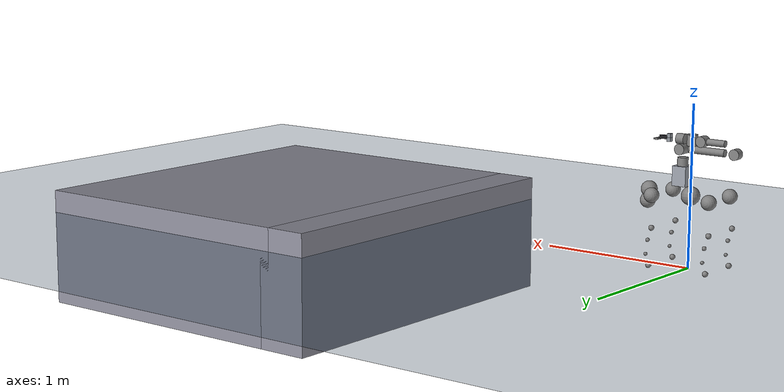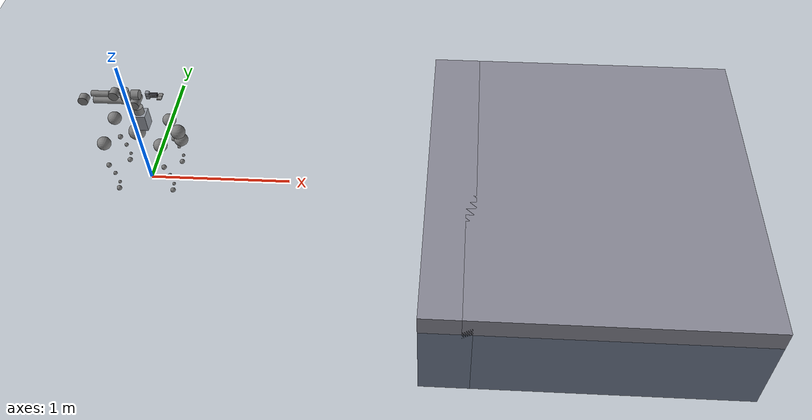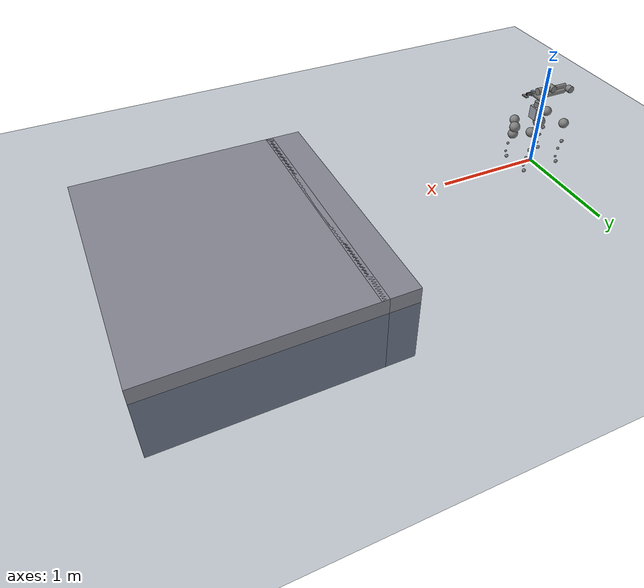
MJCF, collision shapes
<mujoco model="go2 stairs scene">
  <include file="go2z1_mjx.xml"/>

  <statistic center="2.17 0 0.5" extent="2.0"/>

  <visual>
    <headlight diffuse="0.6 0.6 0.6" ambient="0.3 0.3 0.3" specular="0 0 0"/>
    <rgba haze="0.15 0.25 0.35 1"/>
    <global azimuth="-130" elevation="-20" offwidth="1920" offheight="1080"/>
  </visual>

  <asset>
    <texture type="skybox" builtin="gradient" rgb1="0.3 0.5 0.7" rgb2="0 0 0" width="512" height="3072"/>
    <texture type="2d" name="groundplane" builtin="checker" mark="edge" rgb1="0.2 0.3 0.4" rgb2="0.1 0.2 0.3"
      markrgb="0.8 0.8 0.8" width="300" height="300"/>
    <material name="groundplane" texture="groundplane" texuniform="true" texrepeat="5 5" reflectance="0.2"/>
    <material name="tread" rgba="0.55 0.55 0.6 1" reflectance="0.05"/>
  </asset>

  <worldbody>
    <light pos="0 0 3.0" dir="0 0 -1" directional="true"/>
    <geom name="floor" size="0 0 0.05" type="plane" material="groundplane"
      condim="3" friction="0.8 0.02 0.01"/>
    <body name="step0" mocap="true" pos="2.17500 0.00000 -0.25000">
      <geom name="step0_geom" type="box" size="0.17500 1.25000 0.40000"
        material="tread" condim="3" friction="0.8 0.02 0.01"/>
    </body>
    <body name="landing" mocap="true" pos="3.28000 0.00000 -0.25000">
      <geom name="landing_geom" type="box" size="1.00000 1.25000 0.40000"
        material="tread" condim="3" friction="0.8 0.02 0.01"/>
    </body>
  </worldbody>

  <contact>
    <exclude body1="world" body2="step0"/>
    <exclude body1="world" body2="landing"/>
  </contact>
</mujoco>

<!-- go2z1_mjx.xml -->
<mujoco model="go2">
  <compiler angle="radian" meshdir="assets/"/>

  <option impratio="100" iterations="1" ls_iterations="5"/>

  <size nkey="3"/>

  <default>
    <default class="go2">
      <joint armature="0.01" damping="2"/>
      <geom condim="1" friction="0.6" margin="0.001"/>
      <general forcerange="-24 24" biastype="affine" gainprm="50" biasprm="0 -50 -0.5"/>
      <default class="abduction">
        <joint range="-1.0472 1.0472"/>
        <general ctrlrange="-0.9472 0.9472"/>
      </default>
      <default class="hip">
        <joint range="-1.5708 3.4907"/>
        <general ctrlrange="-1.4 2.5"/>
      </default>
      <default class="knee">
        <joint range="-2.7227 -0.83776"/>
        <general ctrlrange="-2.6227 -0.84776"/>
      </default>
      <default class="visual">
        <geom type="mesh" contype="0" conaffinity="0" group="2"/>
      </default>
      <default class="go2foot">
        <geom rgba="0.231373 0.380392 0.705882 1"/>
        <site group="1"/>
      </default>
      <default class="collision">
        <geom group="3"/>
        <default class="foot">
          <geom size="0.0175 0 0" condim="6" priority="1" friction="0.8 0.02 0.01" solimp="0.015 1 0.031"/>
        </default>
      </default>
    </default>
    <default class="arm_main">
      <default class="arm_z1">
        <joint damping="1" frictionloss="1"/>
        <general forcerange="-30 30" biastype="affine" gainprm="1000" biasprm="0 -1000 -100"/>
        <default class="arm_visual">
          <geom type="mesh" contype="0" conaffinity="0" group="2"/>
        </default>
        <default class="arm_collision">
          <geom type="cylinder" group="3"/>
          <default class="arm_z1_gripper_stator_collision">
            <geom type="mesh"/>
          </default>
          <default class="arm_z1_gripper_stator_pad_collision_1">
            <geom size="0.014 0.015 0.004" type="box"/>
          </default>
          <default class="arm_z1_gripper_stator_pad_collision_2">
            <geom size="0.014 0.015 0.004" type="box"/>
          </default>
          <default class="arm_z1_gripper_mover_collision">
            <geom type="mesh"/>
          </default>
          <default class="arm_z1_gripper_mover_pad_collision_1">
            <geom size="0.014 0.015 0.004" type="box"/>
          </default>
          <default class="arm_z1_gripper_mover_pad_collision_2">
            <geom size="0.014 0.015 0.004" type="box"/>
          </default>
        </default>
      </default>
    </default>
  </default>

  <asset>
    <material name="metal" rgba="0.9 0.95 0.95 1"/>
    <material name="black" rgba="0 0 0 1"/>
    <material name="white"/>
    <material name="gray" rgba="0.671705 0.692426 0.77427 1"/>
    <mesh name="base_0" file="base_0.obj"/>
    <mesh name="base_1" file="base_1.obj"/>
    <mesh name="base_2" file="base_2.obj"/>
    <mesh name="base_3" file="base_3.obj"/>
    <mesh name="base_4" file="base_4.obj"/>
    <mesh name="hip_0" file="hip_0.obj"/>
    <mesh name="hip_1" file="hip_1.obj"/>
    <mesh name="thigh_0" file="thigh_0.obj"/>
    <mesh name="thigh_1" file="thigh_1.obj"/>
    <mesh name="thigh_mirror_0" file="thigh_mirror_0.obj"/>
    <mesh name="thigh_mirror_1" file="thigh_mirror_1.obj"/>
    <mesh name="calf_0" file="calf_0.obj"/>
    <mesh name="calf_1" file="calf_1.obj"/>
    <mesh name="calf_mirror_0" file="calf_mirror_0.obj"/>
    <mesh name="calf_mirror_1" file="calf_mirror_1.obj"/>
    <mesh name="foot" file="foot.obj"/>
    <mesh name="arm_z1_Link00" file="z1_Link00.stl"/>
    <mesh name="arm_z1_Link01" file="z1_Link01.stl"/>
    <mesh name="arm_z1_Link02" file="z1_Link02.stl"/>
    <mesh name="arm_z1_Link03" file="z1_Link03.stl"/>
    <mesh name="arm_z1_Link04" file="z1_Link04.stl"/>
    <mesh name="arm_z1_Link05" file="z1_Link05.stl"/>
    <mesh name="arm_z1_Link06" file="z1_Link06.stl"/>
    <mesh name="arm_z1_GripperStator" file="z1_GripperStator.stl"/>
    <mesh name="arm_z1_GripperStator_col_1" file="z1_GripperStator_col_1.stl"/>
    <mesh name="arm_z1_GripperStator_col_2" file="z1_GripperStator_col_2.stl"/>
    <mesh name="arm_z1_GripperStator_col_3" file="z1_GripperStator_col_3.stl"/>
    <mesh name="arm_z1_GripperStator_col_4" file="z1_GripperStator_col_4.stl"/>
    <mesh name="arm_z1_GripperStator_col_5" file="z1_GripperStator_col_5.stl"/>
    <mesh name="arm_z1_GripperStator_col_6" file="z1_GripperStator_col_6.stl"/>
    <mesh name="arm_z1_GripperMover" file="z1_GripperMover.stl"/>
    <mesh name="arm_z1_GripperMover_col_1" file="z1_GripperMover_col_1.stl"/>
    <mesh name="arm_z1_GripperMover_col_2" file="z1_GripperMover_col_2.stl"/>
    <mesh name="arm_z1_GripperMover_col_3" file="z1_GripperMover_col_3.stl"/>
    <mesh name="arm_z1_GripperMover_col_4" file="z1_GripperMover_col_4.stl"/>
    <mesh name="arm_z1_GripperMover_col_5" file="z1_GripperMover_col_5.stl"/>
  </asset>

  <worldbody>
    <body name="base" childclass="go2" pos="0 0 0.445">
      <inertial pos="0.021112 0 -0.005366" quat="-0.000543471 0.713435 -0.00173769 0.700719" mass="6.921" diaginertia="0.107027 0.0980771 0.0244531"/>
      <joint type="free" armature="0" damping="0"/>
      <geom class="visual" material="black" mesh="base_0"/>
      <geom class="visual" material="black" mesh="base_1"/>
      <geom class="visual" material="black" mesh="base_2"/>
      <geom class="visual" material="white" mesh="base_3"/>
      <geom class="visual" material="gray" mesh="base_4"/>
      <geom class="collision" size="0.057"/>
      <geom class="collision" size="0.05" pos="0.285 0 0.01"/>
      <geom class="collision" size="0.047" pos="0.293 0 -0.06"/>
      <site name="imu" pos="-0.02557 0 0.04232"/>
      <site name="head_cam_site" pos="0.33 0 0.04" group="4"/>
      <camera name="track" pos="0.846 -1.465 0.916" quat="0.791164 0.554139 0.148485 0.211997" mode="trackcom"/>
      <camera name="head" pos="0.33 0 0.04" quat="0.579228 0.40558 -0.40558 -0.579228" fovy="75"/>
      <body name="FL_hip" pos="0.1934 0.0465 0">
        <inertial pos="-0.0054 0.00194 -0.000105" quat="0.497014 0.499245 0.505462 0.498237" mass="0.678" diaginertia="0.00088403 0.000596003 0.000479967"/>
        <joint name="FL_hip_joint" class="abduction" pos="0 0 0" axis="1 0 0"/>
        <geom class="visual" material="metal" mesh="hip_0"/>
        <geom class="visual" material="gray" mesh="hip_1"/>
        <geom class="collision" size="0.046" pos="0 0.08 0" quat="0.707107 0.707107 0 0"/>
        <body name="FL_thigh" pos="0 0.0955 0">
          <inertial pos="-0.00374 -0.0223 -0.0327" quat="0.829533 0.0847635 -0.0200632 0.551623" mass="1.152" diaginertia="0.00594973 0.00584149 0.000878787"/>
          <joint name="FL_thigh_joint" class="hip" pos="0 0 0" axis="0 1 0"/>
          <geom class="visual" material="metal" mesh="thigh_0"/>
          <geom class="visual" material="gray" mesh="thigh_1"/>
          <geom class="collision" size="0.017" pos="-0.015 0 -0.1955" quat="0.707107 0 0.707107 0"/>
          <body name="FL_calf" pos="0 0 -0.213">
            <inertial pos="0.00629595 -0.000622121 -0.141417" quat="0.710672 0.00154099 -0.00450087 0.703508" mass="0.241352" diaginertia="0.0014901 0.00146356 5.31397e-05"/>
            <joint name="FL_calf_joint" class="knee" pos="0 0 0" axis="0 1 0"/>
            <geom class="visual" material="gray" mesh="calf_0"/>
            <geom class="visual" material="black" mesh="calf_1"/>
            <geom class="collision" size="0.012" pos="0.008 0 -0.06" quat="0.994493 0 -0.104807 0"/>
            <geom class="collision" size="0.011" pos="0.02 0 -0.148" quat="0.999688 0 0.0249974 0"/>
            <geom class="visual" pos="0 0 -0.213" quat="1 0 0 0" material="black" mesh="foot"/>
            <geom name="FL" class="foot" pos="-0.002 0 -0.213"/>
            <site name="FL_foot" class="go2foot" pos="-0.002 0 -0.213"/>
          </body>
        </body>
      </body>
      <body name="FR_hip" pos="0.1934 -0.0465 0">
        <inertial pos="-0.0054 -0.00194 -0.000105" quat="0.498237 0.505462 0.499245 0.497014" mass="0.678" diaginertia="0.00088403 0.000596003 0.000479967"/>
        <joint name="FR_hip_joint" class="abduction" pos="0 0 0" axis="1 0 0"/>
        <geom class="visual" quat="4.63268e-05 1 0 0" material="metal" mesh="hip_0"/>
        <geom class="visual" quat="4.63268e-05 1 0 0" material="gray" mesh="hip_1"/>
        <geom class="collision" size="0.046" pos="0 -0.08 0" quat="0.707107 0.707107 0 0"/>
        <body name="FR_thigh" pos="0 -0.0955 0">
          <inertial pos="-0.00374 0.0223 -0.0327" quat="0.551623 -0.0200632 0.0847635 0.829533" mass="1.152" diaginertia="0.00594973 0.00584149 0.000878787"/>
          <joint name="FR_thigh_joint" class="hip" pos="0 0 0" axis="0 1 0"/>
          <geom class="visual" material="metal" mesh="thigh_mirror_0"/>
          <geom class="visual" material="gray" mesh="thigh_mirror_1"/>
          <geom class="collision" size="0.017" pos="-0.015 0 -0.1955" quat="0.707107 0 0.707107 0"/>
          <body name="FR_calf" pos="0 0 -0.213">
            <inertial pos="0.00629595 0.000622121 -0.141417" quat="0.703508 -0.00450087 0.00154099 0.710672" mass="0.241352" diaginertia="0.0014901 0.00146356 5.31397e-05"/>
            <joint name="FR_calf_joint" class="knee" pos="0 0 0" axis="0 1 0"/>
            <geom class="visual" material="gray" mesh="calf_mirror_0"/>
            <geom class="visual" material="black" mesh="calf_mirror_1"/>
            <geom class="collision" size="0.013" pos="0.01 0 -0.06" quat="0.995004 0 -0.0998334 0"/>
            <geom class="collision" size="0.011" pos="0.02 0 -0.148" quat="0.999688 0 0.0249974 0"/>
            <geom class="visual" pos="0 0 -0.213" quat="1 0 0 0" material="black" mesh="foot"/>
            <geom name="FR" class="foot" pos="-0.002 0 -0.213"/>
            <site name="FR_foot" class="go2foot" pos="-0.002 0 -0.213"/>
          </body>
        </body>
      </body>
      <body name="RL_hip" pos="-0.1934 0.0465 0">
        <inertial pos="0.0054 0.00194 -0.000105" quat="0.505462 0.498237 0.497014 0.499245" mass="0.678" diaginertia="0.00088403 0.000596003 0.000479967"/>
        <joint name="RL_hip_joint" class="abduction" pos="0 0 0" axis="1 0 0"/>
        <geom class="visual" quat="4.63268e-05 0 1 0" material="metal" mesh="hip_0"/>
        <geom class="visual" quat="4.63268e-05 0 1 0" material="gray" mesh="hip_1"/>
        <geom class="collision" size="0.046" pos="0 0.08 0" quat="0.707107 0.707107 0 0"/>
        <body name="RL_thigh" pos="0 0.0955 0">
          <inertial pos="-0.00374 -0.0223 -0.0327" quat="0.829533 0.0847635 -0.0200632 0.551623" mass="1.152" diaginertia="0.00594973 0.00584149 0.000878787"/>
          <joint name="RL_thigh_joint" class="hip" pos="0 0 0" axis="0 1 0"/>
          <geom class="visual" material="metal" mesh="thigh_0"/>
          <geom class="visual" material="gray" mesh="thigh_1"/>
          <geom class="collision" size="0.017" pos="-0.015 0 -0.1955" quat="0.707107 0 0.707107 0"/>
          <body name="RL_calf" pos="0 0 -0.213">
            <inertial pos="0.00629595 -0.000622121 -0.141417" quat="0.710672 0.00154099 -0.00450087 0.703508" mass="0.241352" diaginertia="0.0014901 0.00146356 5.31397e-05"/>
            <joint name="RL_calf_joint" class="knee" pos="0 0 0" axis="0 1 0"/>
            <geom class="visual" material="gray" mesh="calf_0"/>
            <geom class="visual" material="black" mesh="calf_1"/>
            <geom class="collision" size="0.013" pos="0.01 0 -0.06" quat="0.995004 0 -0.0998334 0"/>
            <geom class="collision" size="0.011" pos="0.02 0 -0.148" quat="0.999688 0 0.0249974 0"/>
            <geom class="visual" pos="0 0 -0.213" quat="1 0 0 0" material="black" mesh="foot"/>
            <geom name="RL" class="foot" pos="-0.002 0 -0.213"/>
            <site name="RL_foot" class="go2foot" pos="-0.002 0 -0.213"/>
          </body>
        </body>
      </body>
      <body name="RR_hip" pos="-0.1934 -0.0465 0">
        <inertial pos="0.0054 -0.00194 -0.000105" quat="0.499245 0.497014 0.498237 0.505462" mass="0.678" diaginertia="0.00088403 0.000596003 0.000479967"/>
        <joint name="RR_hip_joint" class="abduction" pos="0 0 0" axis="1 0 0"/>
        <geom class="visual" quat="2.14617e-09 4.63268e-05 4.63268e-05 -1" material="metal" mesh="hip_0"/>
        <geom class="visual" quat="2.14617e-09 4.63268e-05 4.63268e-05 -1" material="gray" mesh="hip_1"/>
        <geom class="collision" size="0.046" pos="0 -0.08 0" quat="0.707107 0.707107 0 0"/>
        <body name="RR_thigh" pos="0 -0.0955 0">
          <inertial pos="-0.00374 0.0223 -0.0327" quat="0.551623 -0.0200632 0.0847635 0.829533" mass="1.152" diaginertia="0.00594973 0.00584149 0.000878787"/>
          <joint name="RR_thigh_joint" class="hip" pos="0 0 0" axis="0 1 0"/>
          <geom class="visual" material="metal" mesh="thigh_mirror_0"/>
          <geom class="visual" material="gray" mesh="thigh_mirror_1"/>
          <geom class="collision" size="0.017" pos="-0.015 0 -0.1955" quat="0.707107 0 0.707107 0"/>
          <body name="RR_calf" pos="0 0 -0.213">
            <inertial pos="0.00629595 0.000622121 -0.141417" quat="0.703508 -0.00450087 0.00154099 0.710672" mass="0.241352" diaginertia="0.0014901 0.00146356 5.31397e-05"/>
            <joint name="RR_calf_joint" class="knee" pos="0 0 0" axis="0 1 0"/>
            <geom class="visual" material="gray" mesh="calf_mirror_0"/>
            <geom class="visual" material="black" mesh="calf_mirror_1"/>
            <geom class="collision" size="0.013" pos="0.01 0 -0.06" quat="0.995004 0 -0.0998334 0"/>
            <geom class="collision" size="0.011" pos="0.02 0 -0.148" quat="0.999688 0 0.0249974 0"/>
            <geom class="visual" pos="0 0 -0.213" quat="1 0 0 0" material="black" mesh="foot"/>
            <geom name="RR" class="foot" pos="-0.002 0 -0.213"/>
            <site name="RR_foot" class="go2foot" pos="-0.002 0 -0.213"/>
          </body>
        </body>
      </body>
      <body name="arm_pedestal" pos="0.06 0 0.117">
        <geom size="0.045 0.045 0.06" type="box" contype="0" conaffinity="0" group="2" mass="0.4" rgba="0.6 0.62 0.66 1"/>
      </body>
      <body name="arm_link00" childclass="arm_z1" pos="0.06 0 0.177" gravcomp="1">
        <inertial pos="-0.00334984 -0.00013615 0.0249584" quat="-0.00692194 0.682592 0.00133293 0.730766" mass="0.472475" diaginertia="0.000531375 0.000415207 0.000378658"/>
        <geom class="arm_visual" mesh="arm_z1_Link00"/>
        <geom class="arm_collision" size="0.0325 0.0255" pos="0 0 0.0255" contype="0" conaffinity="0"/>
        <body name="arm_link01" pos="0 0 0.0585" gravcomp="1">
          <inertial pos="2.47e-06 -0.00025198 0.0231717" quat="0.708578 0.705633 0.000281462 -0.000355927" mass="0.673326" diaginertia="0.00128328 0.000839362 0.000719308"/>
          <joint name="arm_joint1" pos="0 0 0" axis="0 0 1" range="-2.61799 2.61799" armature="0.08" damping="20"/>
          <geom class="arm_visual" mesh="arm_z1_Link01"/>
          <body name="arm_link02" pos="0 0 0.045" gravcomp="1">
            <inertial pos="-0.110126 0.00240029 0.00158266" quat="0.00748058 0.707092 -0.0114473 0.70699" mass="1.19132" diaginertia="0.0246612 0.0243113 0.00100468"/>
            <joint name="arm_joint2" pos="0 0 0" axis="0 1 0" range="0 2.96706" armature="0.08" damping="30"/>
            <geom class="arm_visual" mesh="arm_z1_Link02"/>
            <geom class="arm_collision" size="0.0325 0.051" quat="0.707107 0.707107 0 0" contype="0" conaffinity="0"/>
            <geom class="arm_collision" size="0.0225 0.1175" pos="-0.1625 0 0" quat="0.707107 0 0.707107 0" contype="0" conaffinity="0"/>
            <geom class="arm_collision" size="0.0325 0.0255" pos="-0.35 0 0" quat="0.707107 0.707107 0 0" contype="0" conaffinity="0"/>
            <body name="arm_link03" pos="-0.35 0 0" gravcomp="1">
              <inertial pos="0.106092 -0.00541815 0.0347638" quat="0.540557 0.443575 0.426319 0.573839" mass="0.839409" diaginertia="0.00954365 0.00938711 0.000558432"/>
              <joint name="arm_joint3" pos="0 0 0" axis="0 1 0" range="-2.87979 0" armature="0.08" damping="20"/>
              <geom class="arm_visual" mesh="arm_z1_Link03"/>
              <geom class="arm_collision" size="0.02 0.058" pos="0.128 0 0.055" quat="0.707107 0 0.707107 0" contype="0" conaffinity="0"/>
              <geom class="arm_collision" size="0.0325 0.0295" pos="0.2205 0 0.055" quat="0.5 -0.5 0.5 0.5" contype="0" conaffinity="0"/>
              <body name="arm_link04" pos="0.218 0 0.057" gravcomp="1">
                <inertial pos="0.0436668 0.00364738 -0.00170192" quat="0.0390835 0.726445 -0.0526787 0.684087" mass="0.564046" diaginertia="0.000981656 0.00094053 0.000302655"/>
                <joint name="arm_joint4" pos="0 0 0" axis="0 1 0" range="-1.51844 1.51844" armature="0.08" damping="20"/>
                <geom class="arm_visual" mesh="arm_z1_Link04"/>
                <geom class="arm_collision" size="0.0325 0.0335" pos="0.072 0 0" contype="0" conaffinity="0"/>
                <body name="arm_link05" pos="0.07 0 0" gravcomp="1">
                  <inertial pos="0.0312153 0 0.00646316" quat="0.462205 0.535209 0.53785 0.45895" mass="0.389385" diaginertia="0.000558961 0.000547317 0.000167332"/>
                  <joint name="arm_joint5" pos="0 0 0" axis="0 0 1" range="-1.3439 1.3439" armature="0.08" damping="20"/>
                  <geom class="arm_visual" mesh="arm_z1_Link05"/>
                  <body name="arm_link06" pos="0.0492 0 0" gravcomp="1">
                    <inertial pos="0.0241569 -0.00017355 -0.00143876" quat="0.998779 0.0457735 -0.00663717 0.0173548" mass="0.288758" diaginertia="0.00018333 0.000147464 0.000146786"/>
                    <joint name="arm_joint6" pos="0 0 0" axis="1 0 0" range="-2.79253 2.79253" armature="0.08" damping="20"/>
                    <geom class="arm_visual" mesh="arm_z1_Link06"/>
                    <geom class="arm_collision" size="0.0325 0.0255" pos="0.0255 0 0" quat="0.707107 0 0.707107 0" contype="0" conaffinity="0"/>
                    <geom class="arm_visual" pos="0.051 0 0" quat="1 0 0 0" mesh="arm_z1_GripperStator"/>
                    <geom class="arm_z1_gripper_stator_collision" pos="0.051 0 0" quat="1 0 0 0" contype="0" conaffinity="0" mesh="arm_z1_GripperStator_col_1"/>
                    <geom class="arm_z1_gripper_stator_collision" pos="0.051 0 0" quat="1 0 0 0" contype="0" conaffinity="0" mesh="arm_z1_GripperStator_col_2"/>
                    <geom class="arm_z1_gripper_stator_collision" pos="0.051 0 0" quat="1 0 0 0" contype="0" conaffinity="0" mesh="arm_z1_GripperStator_col_3"/>
                    <geom class="arm_z1_gripper_stator_collision" pos="0.051 0 0" quat="1 0 0 0" contype="0" conaffinity="0" mesh="arm_z1_GripperStator_col_4"/>
                    <geom class="arm_z1_gripper_stator_collision" pos="0.051 0 0" quat="1 0 0 0" contype="0" conaffinity="0" mesh="arm_z1_GripperStator_col_5"/>
                    <geom class="arm_z1_gripper_stator_collision" pos="0.051 0 0" quat="1 0 0 0" contype="0" conaffinity="0" mesh="arm_z1_GripperStator_col_6"/>
                    <geom class="arm_z1_gripper_stator_pad_collision_1" pos="0.186 -0.015 -0.0125" contype="0" conaffinity="0"/>
                    <geom class="arm_z1_gripper_stator_pad_collision_2" pos="0.186 0.015 -0.0125" contype="0" conaffinity="0"/>
                    <site name="ee" pos="0.145 0 0" size="0.01" group="1" rgba="1 0.3 0.3 1"/>
                    <camera name="wrist" pos="0 0 0.11" quat="0.541675 0.454519 -0.454519 -0.541675" fovy="75"/>
                    <body name="arm_finger_a" pos="0.1 0 0">
                      <joint name="arm_finger_a" pos="0 0 0" axis="0 0 1" type="slide" range="0 0.038" armature="0.004" damping="8"/>
                      <geom name="finger_a_pad" size="0.026 0.013 0.005" pos="0.045 0 0.005" type="box" contype="0" conaffinity="0" condim="6" group="2" friction="2 0.25 0.02" solref="0.002" solimp="0.995 0.9995 0.0002" rgba="0.15 0.15 0.17 1"/>
                      <geom name="finger_a_back" size="0.012 0.013 0.012" pos="0.008 0 0.012" type="box" contype="0" conaffinity="0" group="2" rgba="0.55 0.57 0.6 1"/>
                    </body>
                    <body name="arm_finger_b" pos="0.1 0 0">
                      <joint name="arm_finger_b" pos="0 0 0" axis="0 0 -1" type="slide" range="0 0.038" armature="0.004" damping="8"/>
                      <geom name="finger_b_pad" size="0.026 0.013 0.005" pos="0.045 0 -0.005" type="box" contype="0" conaffinity="0" condim="6" group="2" friction="2 0.25 0.02" solref="0.002" solimp="0.995 0.9995 0.0002" rgba="0.15 0.15 0.17 1"/>
                      <geom name="finger_b_back" size="0.012 0.013 0.012" pos="0.008 0 -0.012" type="box" contype="0" conaffinity="0" group="2" rgba="0.55 0.57 0.6 1"/>
                    </body>
                  </body>
                </body>
              </body>
            </body>
          </body>
        </body>
      </body>
    </body>
  </worldbody>

  <actuator>
    <general name="FL_hip" class="abduction" joint="FL_hip_joint"/>
    <general name="FL_thigh" class="hip" joint="FL_thigh_joint"/>
    <general name="FL_calf" class="knee" joint="FL_calf_joint"/>
    <general name="FR_hip" class="abduction" joint="FR_hip_joint"/>
    <general name="FR_thigh" class="hip" joint="FR_thigh_joint"/>
    <general name="FR_calf" class="knee" joint="FR_calf_joint"/>
    <general name="RL_hip" class="abduction" joint="RL_hip_joint"/>
    <general name="RL_thigh" class="hip" joint="RL_thigh_joint"/>
    <general name="RL_calf" class="knee" joint="RL_calf_joint"/>
    <general name="RR_hip" class="abduction" joint="RR_hip_joint"/>
    <general name="RR_thigh" class="hip" joint="RR_thigh_joint"/>
    <general name="RR_calf" class="knee" joint="RR_calf_joint"/>
    <general name="arm_motor1" class="arm_z1" joint="arm_joint1" ctrlrange="-2.61799 2.61799" gainprm="1500" biasprm="0 -1500 0"/>
    <general name="arm_motor2" class="arm_z1" joint="arm_joint2" ctrlrange="0 2.96706" forcerange="-60 60" gainprm="2000" biasprm="0 -2000 0"/>
    <general name="arm_motor3" class="arm_z1" joint="arm_joint3" ctrlrange="-2.87979 0" gainprm="1500" biasprm="0 -1500 0"/>
    <general name="arm_motor4" class="arm_z1" joint="arm_joint4" ctrlrange="-1.51844 1.51844" gainprm="1500" biasprm="0 -1500 0"/>
    <general name="arm_motor5" class="arm_z1" joint="arm_joint5" ctrlrange="-1.3439 1.3439" gainprm="1500" biasprm="0 -1500 0"/>
    <general name="arm_motor6" class="arm_z1" joint="arm_joint6" ctrlrange="-2.79253 2.79253" gainprm="1500" biasprm="0 -1500 0"/>
    <general name="arm_motorGripper_a" joint="arm_finger_a" ctrllimited="true" ctrlrange="-0.008 0.038" forcerange="-150 150" biastype="affine" gainprm="1200" biasprm="0 -1200 -25"/>
    <general name="arm_motorGripper_b" joint="arm_finger_b" ctrllimited="true" ctrlrange="-0.008 0.038" forcerange="-150 150" biastype="affine" gainprm="1200" biasprm="0 -1200 -25"/>
  </actuator>

  <sensor>
    <jointpos joint="FL_hip_joint" name="abduction_front_left_pos"/>
    <jointpos joint="FL_thigh_joint" name="hip_front_left_pos"/>
    <jointpos joint="FL_calf_joint" name="knee_front_left_pos"/>
    <jointpos joint="RL_hip_joint" name="abduction_hind_left_pos"/>
    <jointpos joint="RL_thigh_joint" name="hip_hind_left_pos"/>
    <jointpos joint="RL_calf_joint" name="knee_hind_left_pos"/>
    <jointpos joint="FR_hip_joint" name="abduction_front_right_pos"/>
    <jointpos joint="FR_thigh_joint" name="hip_front_right_pos"/>
    <jointpos joint="FR_calf_joint" name="knee_front_right_pos"/>
    <jointpos joint="RR_hip_joint" name="abduction_hind_right_pos"/>
    <jointpos joint="RR_thigh_joint" name="hip_hind_right_pos"/>
    <jointpos joint="RR_calf_joint" name="knee_hind_right_pos"/>
    <jointvel joint="FL_hip_joint" name="abduction_front_left_vel"/>
    <jointvel joint="FL_thigh_joint" name="hip_front_left_vel"/>
    <jointvel joint="FL_calf_joint" name="knee_front_left_vel"/>
    <jointvel joint="RL_hip_joint" name="abduction_hind_left_vel"/>
    <jointvel joint="RL_thigh_joint" name="hip_hind_left_vel"/>
    <jointvel joint="RL_calf_joint" name="knee_hind_left_vel"/>
    <jointvel joint="FR_hip_joint" name="abduction_front_right_vel"/>
    <jointvel joint="FR_thigh_joint" name="hip_front_right_vel"/>
    <jointvel joint="FR_calf_joint" name="knee_front_right_vel"/>
    <jointvel joint="RR_hip_joint" name="abduction_hind_right_vel"/>
    <jointvel joint="RR_thigh_joint" name="hip_hind_right_vel"/>
    <jointvel joint="RR_calf_joint" name="knee_hind_right_vel"/>
    <gyro site="imu" name="gyro"/>
    <accelerometer site="imu" name="accelerometer"/>
    <framequat objtype="site" objname="imu" name="orientation"/>
    <framepos objtype="site" objname="imu" name="global_position"/>
    <framelinvel objtype="site" objname="imu" name="global_linvel"/>
    <frameangvel objtype="site" objname="imu" name="global_angvel"/>
  </sensor>

  <keyframe>
    <key name="home" qpos="0 0 0.3 1 0 0 0 0 0.9 -1.8 0 0.9 -1.8 0 0.9 -1.8 0 0.9 -1.8 0 0 -0.05 0 0 0 0 0" ctrl="0 0.9 -1.8 0 0.9 -1.8 0 0.9 -1.8 0 0.9 -1.8 0 0 -0.05 0 0 0 0 0"/>
    <key name="extended" qpos="0 0 0.3 1 0 0 0 0 0.9 -1.8 0 0.9 -1.8 0 0.9 -1.8 0 0.9 -1.8 0 1.35 -0.45 -0.9 0 0 0.03 0.03" ctrl="0 0.9 -1.8 0 0.9 -1.8 0 0.9 -1.8 0 0.9 -1.8 0 1.35 -0.45 -0.9 0 0 0.03 0.03"/>
    <key name="ready" qpos="0 0 0.3 1 0 0 0 0 0.9 -1.8 0 0.9 -1.8 0 0.9 -1.8 0 0.9 -1.8 0 0.9 -1.2 0.3 0 0 0.035 0.035" ctrl="0 0.9 -1.8 0 0.9 -1.8 0 0.9 -1.8 0 0.9 -1.8 0 0.9 -1.2 0.3 0 0 0.035 0.035"/>
  </keyframe>
</mujoco>
